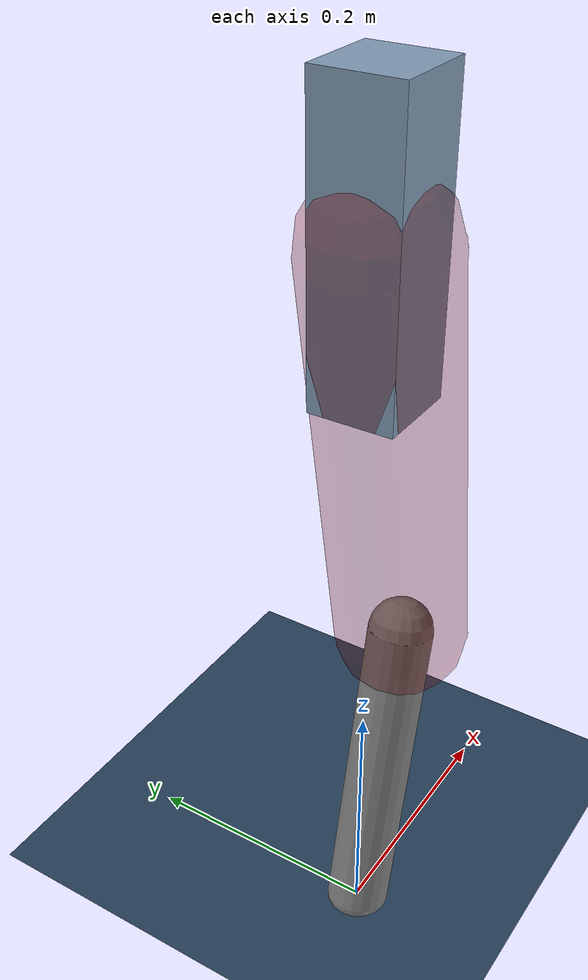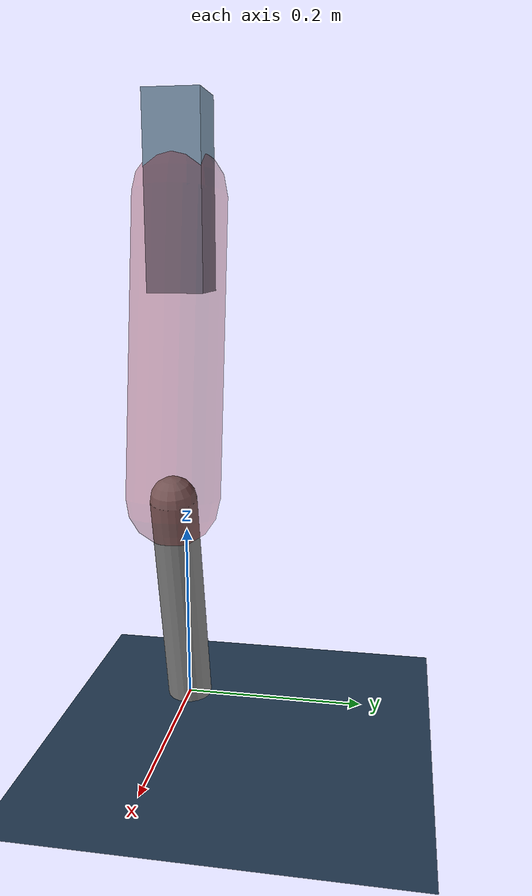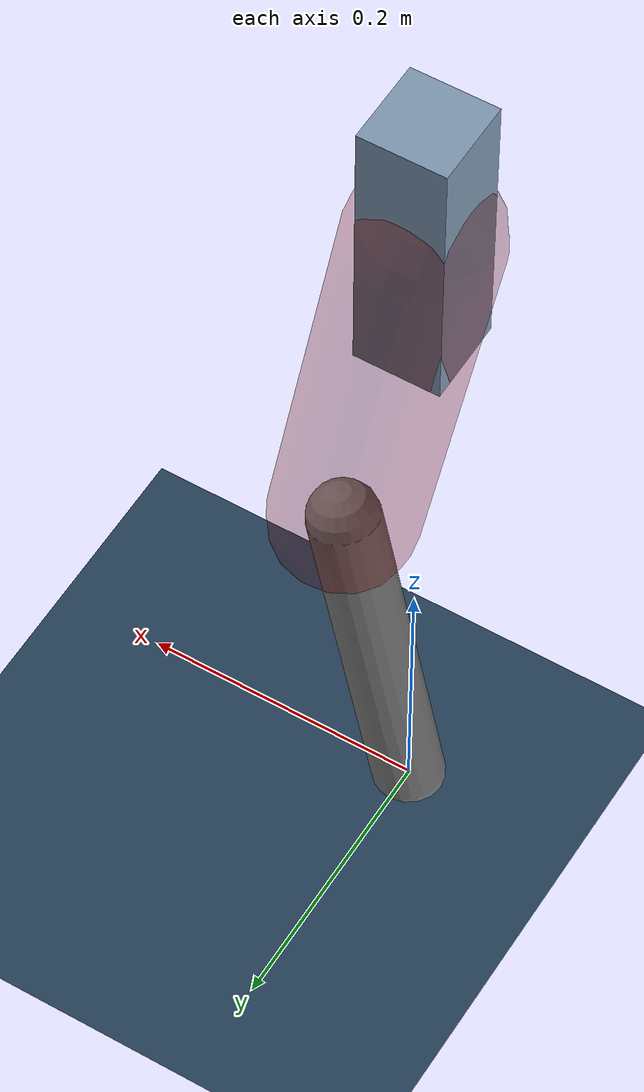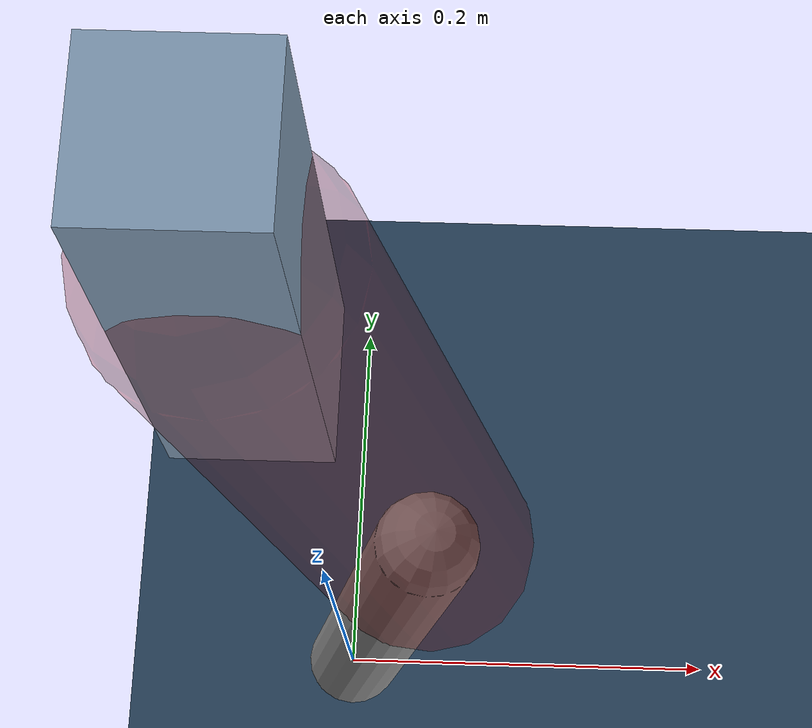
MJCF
<mujoco model="Hopper2D">
	<compiler inertiafromgeom="true" angle="radian" />
	<option timestep="0.001" integrator="implicit" cone="elliptic" solver="Newton" tolerance="1e-10" />

	<default>
		<geom contype="1" conaffinity="1" condim="3" friction="2 0.005 0.0001" solref="0.005 1" />
		<joint limited="true" damping="0.1" />
	</default>

	<asset>
		<texture name="skybox" type="skybox" builtin="gradient" rgb1=".4 .6 .8" rgb2="0 0 0" width="800" height="800" />
		<texture name="grid" type="2d" builtin="checker" rgb1=".1 .2 .3" rgb2=".2 .3 .4" width="300" height="300" mark="edge" markrgb=".2 .3 .4" />
		<material name="ground" texture="grid" texrepeat="1 1" texuniform="true" reflectance="0.1" />
		<material name="leg" rgba="0.5 0.6 0.7 1" />
	</asset>

	<worldbody>

		<geom name="floor" type="plane" size="5 5 0.25" material="ground" />

		<light directional="false" diffuse="0.8 0.8 0.8" specular="0.3 0.3 0.3" pos="0 0 2" dir="0 0 -1" />
		<light mode="targetbodycom" target="base" directional="false" diffuse="0.8 0.8 0.8" specular="0.3 0.3 0.3" pos="0 0 2" dir="0 0 -1" />

		<camera name="fixed" pos="0 -2 1" xyaxes="1 0 0 0 0 1" />
		<camera name="tracking" mode="trackcom" pos="0 -3 1" />

		<body name="root" pos="0 0 0.5661689155781537">
			<joint name="slide_x" type="slide" axis="1 0 0" range="-100 100" />
			<joint name="slide_z" type="slide" axis="0 0 1" range="0 10" />

			<body name="base" pos="0 0 0">
				<geom name="torso" type="box" size="0.03 0.03 0.1" mass="3.7089999999999996" material="leg" />

				<body name="link1" pos="0 0 0" euler="0 1.4032541398055711 0">
					<joint type="hinge" axis="0 -1 0" pos="0 0 0" name="hinge1" limited="true" range="-3.14 3.14" stiffness="0" damping="0.1" />
					<geom name="thigh" type="capsule" fromto="0 0 0 0.31859541974345784 0 0" size="0.05" rgba="0.5 0 0 0.3" mass="1.039407633307336" />

					<body name="link2" pos="0.31859541974345784 0 0" euler="0 0.37530011455600865 0">
						<joint type="hinge" axis="0 -1 0" pos="0 0 0" name="hinge2" limited="true" range="-3.14 3.14" stiffness="0" damping="0.1" />
						<geom name="shank" type="capsule" fromto="0 0 0 0.25757349583469585 0 0" size="0.025" mass="0.44875879666775664" />

					</body>
				</body>
			</body>
		</body>
	</worldbody>

	<actuator>
		<motor name="torque1" joint="hinge1" ctrlrange="-206.56689361285038 206.56689361285038" ctrllimited="true" gear="1" />
		<motor name="torque2" joint="hinge2" ctrlrange="-119.98340855695918 119.98340855695918" ctrllimited="true" gear="1" />
	</actuator>
</mujoco>
